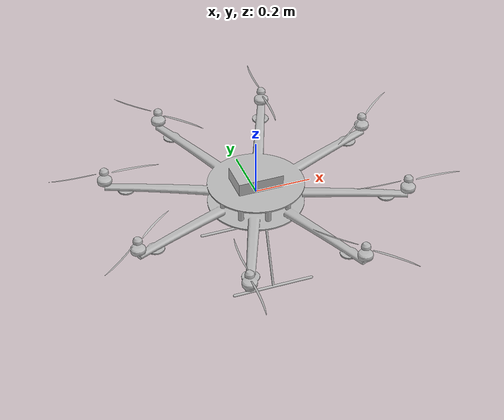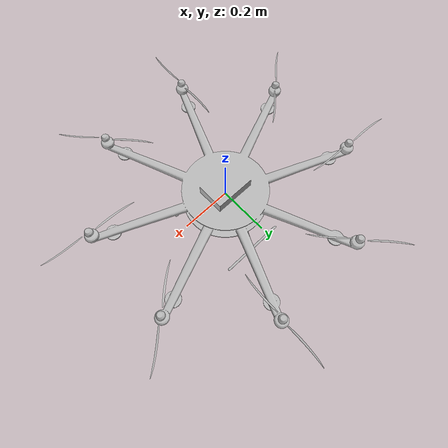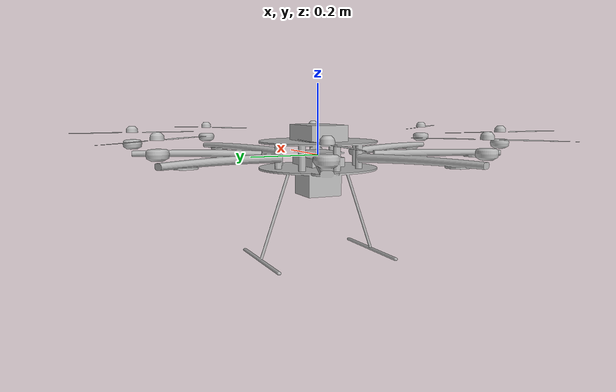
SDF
<?xml version="1.0" ?>
<sdf version="1.9">
  <model name="s1000plus">
    <!-- 자동 생성: src/gazebo_export.py -->
    <!-- 메쉬: src/drone_cad.py (trimesh + manifold3d + shapely + scipy) -->
    <!-- 제원 출처: docs/drone_specs_2026.json (공식 DJI + 적대적 검증) -->
    <!-- ⚠ 질량 분포/관성텐서는 **메쉬에서 계산한 추정치**다. DJI 는 공개하지 않는다. -->
    <!--   총질량만 공식 TOW(9500 g)에 맞췄고, 분포는 부위별 밀도가 정했다. -->

    <link name="base_link">
      <pose>0 0 0 0 0 0</pose>
      <inertial>
        <mass>9.385785</mass>
        <pose>0.000914 -0.000000 -0.001117 0 0 0</pose>
        <inertia>
          <ixx>0.41337642</ixx> <ixy>-0.00000000</ixy> <ixz>0.00071413</ixz>
          <iyy>0.41456010</iyy> <iyz>0.00000000</iyz> <izz>0.77221232</izz>
        </inertia>
      </inertial>
      <collision name="base_collision">
        <geometry><mesh><uri>model://s1000plus/meshes/base_link_collision.stl</uri></mesh></geometry>
      </collision>
      <visual name="base_visual">
        <geometry><mesh><uri>model://s1000plus/meshes/base_link.stl</uri></mesh></geometry>
      </visual>
    </link>

    <link name="rotor_0">
      <pose>0.482037 0.199666 0.063798 0 0 0.602139</pose>
      <inertial>
        <mass>0.014277</mass>
        <inertia>
          <ixx>0.0000012436</ixx> <ixy>0</ixy> <ixz>0</ixz>
          <iyy>0.0000145918</iyy> <iyz>0</iyz> <izz>0.0000151754</izz>
        </inertia>
      </inertial>
      <collision name="rotor_collision">
        <geometry><mesh><uri>model://s1000plus/meshes/rotor_collision.stl</uri></mesh></geometry>
      </collision>
      <visual name="rotor_visual">
        <geometry><mesh><uri>model://s1000plus/meshes/rotor.stl</uri></mesh></geometry>
      </visual>
    </link>
    <joint name="rotor_0_joint" type="revolute">
      <parent>base_link</parent>
      <child>rotor_0</child>
      <axis><xyz>0 0 1</xyz><limit><lower>-1e16</lower><upper>1e16</upper></limit></axis>
    </joint>
    <plugin filename="gz-sim-multicopter-motor-model-system" name="gz::sim::systems::MulticopterMotorModel">
      <jointName>rotor_0_joint</jointName>
      <linkName>rotor_0</linkName>
      <turningDirection>ccw</turningDirection>
      <timeConstantUp>0.0125</timeConstantUp>
      <timeConstantDown>0.025</timeConstantDown>
      <maxRotVelocity>586.43</maxRotVelocity>
      <motorConstant>8.193926e-05</motorConstant>
      <momentConstant>0.0229</momentConstant>
      <rotorDragCoefficient>8.064280e-05</rotorDragCoefficient>
      <rollingMomentCoefficient>1.0e-06</rollingMomentCoefficient>
      <rotorVelocitySlowdownSim>10</rotorVelocitySlowdownSim>
      <motorNumber>0</motorNumber>
      <commandSubTopic>command/motor_speed</commandSubTopic>
      <motorType>velocity</motorType>
    </plugin>

    <link name="rotor_1">
      <pose>0.199666 0.482037 0.063798 0 0 1.387537</pose>
      <inertial>
        <mass>0.014277</mass>
        <inertia>
          <ixx>0.0000012436</ixx> <ixy>0</ixy> <ixz>0</ixz>
          <iyy>0.0000145918</iyy> <iyz>0</iyz> <izz>0.0000151754</izz>
        </inertia>
      </inertial>
      <collision name="rotor_collision">
        <geometry><mesh><uri>model://s1000plus/meshes/rotor_collision.stl</uri></mesh></geometry>
      </collision>
      <visual name="rotor_visual">
        <geometry><mesh><uri>model://s1000plus/meshes/rotor.stl</uri></mesh></geometry>
      </visual>
    </link>
    <joint name="rotor_1_joint" type="revolute">
      <parent>base_link</parent>
      <child>rotor_1</child>
      <axis><xyz>0 0 1</xyz><limit><lower>-1e16</lower><upper>1e16</upper></limit></axis>
    </joint>
    <plugin filename="gz-sim-multicopter-motor-model-system" name="gz::sim::systems::MulticopterMotorModel">
      <jointName>rotor_1_joint</jointName>
      <linkName>rotor_1</linkName>
      <turningDirection>cw</turningDirection>
      <timeConstantUp>0.0125</timeConstantUp>
      <timeConstantDown>0.025</timeConstantDown>
      <maxRotVelocity>586.43</maxRotVelocity>
      <motorConstant>8.193926e-05</motorConstant>
      <momentConstant>0.0229</momentConstant>
      <rotorDragCoefficient>8.064280e-05</rotorDragCoefficient>
      <rollingMomentCoefficient>1.0e-06</rollingMomentCoefficient>
      <rotorVelocitySlowdownSim>10</rotorVelocitySlowdownSim>
      <motorNumber>1</motorNumber>
      <commandSubTopic>command/motor_speed</commandSubTopic>
      <motorType>velocity</motorType>
    </plugin>

    <link name="rotor_2">
      <pose>-0.199666 0.482037 0.063798 0 0 2.172935</pose>
      <inertial>
        <mass>0.014277</mass>
        <inertia>
          <ixx>0.0000012436</ixx> <ixy>0</ixy> <ixz>0</ixz>
          <iyy>0.0000145918</iyy> <iyz>0</iyz> <izz>0.0000151754</izz>
        </inertia>
      </inertial>
      <collision name="rotor_collision">
        <geometry><mesh><uri>model://s1000plus/meshes/rotor_collision.stl</uri></mesh></geometry>
      </collision>
      <visual name="rotor_visual">
        <geometry><mesh><uri>model://s1000plus/meshes/rotor.stl</uri></mesh></geometry>
      </visual>
    </link>
    <joint name="rotor_2_joint" type="revolute">
      <parent>base_link</parent>
      <child>rotor_2</child>
      <axis><xyz>0 0 1</xyz><limit><lower>-1e16</lower><upper>1e16</upper></limit></axis>
    </joint>
    <plugin filename="gz-sim-multicopter-motor-model-system" name="gz::sim::systems::MulticopterMotorModel">
      <jointName>rotor_2_joint</jointName>
      <linkName>rotor_2</linkName>
      <turningDirection>ccw</turningDirection>
      <timeConstantUp>0.0125</timeConstantUp>
      <timeConstantDown>0.025</timeConstantDown>
      <maxRotVelocity>586.43</maxRotVelocity>
      <motorConstant>8.193926e-05</motorConstant>
      <momentConstant>0.0229</momentConstant>
      <rotorDragCoefficient>8.064280e-05</rotorDragCoefficient>
      <rollingMomentCoefficient>1.0e-06</rollingMomentCoefficient>
      <rotorVelocitySlowdownSim>10</rotorVelocitySlowdownSim>
      <motorNumber>2</motorNumber>
      <commandSubTopic>command/motor_speed</commandSubTopic>
      <motorType>velocity</motorType>
    </plugin>

    <link name="rotor_3">
      <pose>-0.482037 0.199666 0.063798 0 0 2.958333</pose>
      <inertial>
        <mass>0.014277</mass>
        <inertia>
          <ixx>0.0000012436</ixx> <ixy>0</ixy> <ixz>0</ixz>
          <iyy>0.0000145918</iyy> <iyz>0</iyz> <izz>0.0000151754</izz>
        </inertia>
      </inertial>
      <collision name="rotor_collision">
        <geometry><mesh><uri>model://s1000plus/meshes/rotor_collision.stl</uri></mesh></geometry>
      </collision>
      <visual name="rotor_visual">
        <geometry><mesh><uri>model://s1000plus/meshes/rotor.stl</uri></mesh></geometry>
      </visual>
    </link>
    <joint name="rotor_3_joint" type="revolute">
      <parent>base_link</parent>
      <child>rotor_3</child>
      <axis><xyz>0 0 1</xyz><limit><lower>-1e16</lower><upper>1e16</upper></limit></axis>
    </joint>
    <plugin filename="gz-sim-multicopter-motor-model-system" name="gz::sim::systems::MulticopterMotorModel">
      <jointName>rotor_3_joint</jointName>
      <linkName>rotor_3</linkName>
      <turningDirection>cw</turningDirection>
      <timeConstantUp>0.0125</timeConstantUp>
      <timeConstantDown>0.025</timeConstantDown>
      <maxRotVelocity>586.43</maxRotVelocity>
      <motorConstant>8.193926e-05</motorConstant>
      <momentConstant>0.0229</momentConstant>
      <rotorDragCoefficient>8.064280e-05</rotorDragCoefficient>
      <rollingMomentCoefficient>1.0e-06</rollingMomentCoefficient>
      <rotorVelocitySlowdownSim>10</rotorVelocitySlowdownSim>
      <motorNumber>3</motorNumber>
      <commandSubTopic>command/motor_speed</commandSubTopic>
      <motorType>velocity</motorType>
    </plugin>

    <link name="rotor_4">
      <pose>-0.482037 -0.199666 0.063798 0 0 3.743731</pose>
      <inertial>
        <mass>0.014277</mass>
        <inertia>
          <ixx>0.0000012436</ixx> <ixy>0</ixy> <ixz>0</ixz>
          <iyy>0.0000145918</iyy> <iyz>0</iyz> <izz>0.0000151754</izz>
        </inertia>
      </inertial>
      <collision name="rotor_collision">
        <geometry><mesh><uri>model://s1000plus/meshes/rotor_collision.stl</uri></mesh></geometry>
      </collision>
      <visual name="rotor_visual">
        <geometry><mesh><uri>model://s1000plus/meshes/rotor.stl</uri></mesh></geometry>
      </visual>
    </link>
    <joint name="rotor_4_joint" type="revolute">
      <parent>base_link</parent>
      <child>rotor_4</child>
      <axis><xyz>0 0 1</xyz><limit><lower>-1e16</lower><upper>1e16</upper></limit></axis>
    </joint>
    <plugin filename="gz-sim-multicopter-motor-model-system" name="gz::sim::systems::MulticopterMotorModel">
      <jointName>rotor_4_joint</jointName>
      <linkName>rotor_4</linkName>
      <turningDirection>ccw</turningDirection>
      <timeConstantUp>0.0125</timeConstantUp>
      <timeConstantDown>0.025</timeConstantDown>
      <maxRotVelocity>586.43</maxRotVelocity>
      <motorConstant>8.193926e-05</motorConstant>
      <momentConstant>0.0229</momentConstant>
      <rotorDragCoefficient>8.064280e-05</rotorDragCoefficient>
      <rollingMomentCoefficient>1.0e-06</rollingMomentCoefficient>
      <rotorVelocitySlowdownSim>10</rotorVelocitySlowdownSim>
      <motorNumber>4</motorNumber>
      <commandSubTopic>command/motor_speed</commandSubTopic>
      <motorType>velocity</motorType>
    </plugin>

    <link name="rotor_5">
      <pose>-0.199666 -0.482037 0.063798 0 0 4.529129</pose>
      <inertial>
        <mass>0.014277</mass>
        <inertia>
          <ixx>0.0000012436</ixx> <ixy>0</ixy> <ixz>0</ixz>
          <iyy>0.0000145918</iyy> <iyz>0</iyz> <izz>0.0000151754</izz>
        </inertia>
      </inertial>
      <collision name="rotor_collision">
        <geometry><mesh><uri>model://s1000plus/meshes/rotor_collision.stl</uri></mesh></geometry>
      </collision>
      <visual name="rotor_visual">
        <geometry><mesh><uri>model://s1000plus/meshes/rotor.stl</uri></mesh></geometry>
      </visual>
    </link>
    <joint name="rotor_5_joint" type="revolute">
      <parent>base_link</parent>
      <child>rotor_5</child>
      <axis><xyz>0 0 1</xyz><limit><lower>-1e16</lower><upper>1e16</upper></limit></axis>
    </joint>
    <plugin filename="gz-sim-multicopter-motor-model-system" name="gz::sim::systems::MulticopterMotorModel">
      <jointName>rotor_5_joint</jointName>
      <linkName>rotor_5</linkName>
      <turningDirection>cw</turningDirection>
      <timeConstantUp>0.0125</timeConstantUp>
      <timeConstantDown>0.025</timeConstantDown>
      <maxRotVelocity>586.43</maxRotVelocity>
      <motorConstant>8.193926e-05</motorConstant>
      <momentConstant>0.0229</momentConstant>
      <rotorDragCoefficient>8.064280e-05</rotorDragCoefficient>
      <rollingMomentCoefficient>1.0e-06</rollingMomentCoefficient>
      <rotorVelocitySlowdownSim>10</rotorVelocitySlowdownSim>
      <motorNumber>5</motorNumber>
      <commandSubTopic>command/motor_speed</commandSubTopic>
      <motorType>velocity</motorType>
    </plugin>

    <link name="rotor_6">
      <pose>0.199666 -0.482037 0.063798 0 0 5.314528</pose>
      <inertial>
        <mass>0.014277</mass>
        <inertia>
          <ixx>0.0000012436</ixx> <ixy>0</ixy> <ixz>0</ixz>
          <iyy>0.0000145918</iyy> <iyz>0</iyz> <izz>0.0000151754</izz>
        </inertia>
      </inertial>
      <collision name="rotor_collision">
        <geometry><mesh><uri>model://s1000plus/meshes/rotor_collision.stl</uri></mesh></geometry>
      </collision>
      <visual name="rotor_visual">
        <geometry><mesh><uri>model://s1000plus/meshes/rotor.stl</uri></mesh></geometry>
      </visual>
    </link>
    <joint name="rotor_6_joint" type="revolute">
      <parent>base_link</parent>
      <child>rotor_6</child>
      <axis><xyz>0 0 1</xyz><limit><lower>-1e16</lower><upper>1e16</upper></limit></axis>
    </joint>
    <plugin filename="gz-sim-multicopter-motor-model-system" name="gz::sim::systems::MulticopterMotorModel">
      <jointName>rotor_6_joint</jointName>
      <linkName>rotor_6</linkName>
      <turningDirection>ccw</turningDirection>
      <timeConstantUp>0.0125</timeConstantUp>
      <timeConstantDown>0.025</timeConstantDown>
      <maxRotVelocity>586.43</maxRotVelocity>
      <motorConstant>8.193926e-05</motorConstant>
      <momentConstant>0.0229</momentConstant>
      <rotorDragCoefficient>8.064280e-05</rotorDragCoefficient>
      <rollingMomentCoefficient>1.0e-06</rollingMomentCoefficient>
      <rotorVelocitySlowdownSim>10</rotorVelocitySlowdownSim>
      <motorNumber>6</motorNumber>
      <commandSubTopic>command/motor_speed</commandSubTopic>
      <motorType>velocity</motorType>
    </plugin>

    <link name="rotor_7">
      <pose>0.482037 -0.199666 0.063798 0 0 6.099926</pose>
      <inertial>
        <mass>0.014277</mass>
        <inertia>
          <ixx>0.0000012436</ixx> <ixy>0</ixy> <ixz>0</ixz>
          <iyy>0.0000145918</iyy> <iyz>0</iyz> <izz>0.0000151754</izz>
        </inertia>
      </inertial>
      <collision name="rotor_collision">
        <geometry><mesh><uri>model://s1000plus/meshes/rotor_collision.stl</uri></mesh></geometry>
      </collision>
      <visual name="rotor_visual">
        <geometry><mesh><uri>model://s1000plus/meshes/rotor.stl</uri></mesh></geometry>
      </visual>
    </link>
    <joint name="rotor_7_joint" type="revolute">
      <parent>base_link</parent>
      <child>rotor_7</child>
      <axis><xyz>0 0 1</xyz><limit><lower>-1e16</lower><upper>1e16</upper></limit></axis>
    </joint>
    <plugin filename="gz-sim-multicopter-motor-model-system" name="gz::sim::systems::MulticopterMotorModel">
      <jointName>rotor_7_joint</jointName>
      <linkName>rotor_7</linkName>
      <turningDirection>cw</turningDirection>
      <timeConstantUp>0.0125</timeConstantUp>
      <timeConstantDown>0.025</timeConstantDown>
      <maxRotVelocity>586.43</maxRotVelocity>
      <motorConstant>8.193926e-05</motorConstant>
      <momentConstant>0.0229</momentConstant>
      <rotorDragCoefficient>8.064280e-05</rotorDragCoefficient>
      <rollingMomentCoefficient>1.0e-06</rollingMomentCoefficient>
      <rotorVelocitySlowdownSim>10</rotorVelocitySlowdownSim>
      <motorNumber>7</motorNumber>
      <commandSubTopic>command/motor_speed</commandSubTopic>
      <motorType>velocity</motorType>
    </plugin>

  </model>
</sdf>
